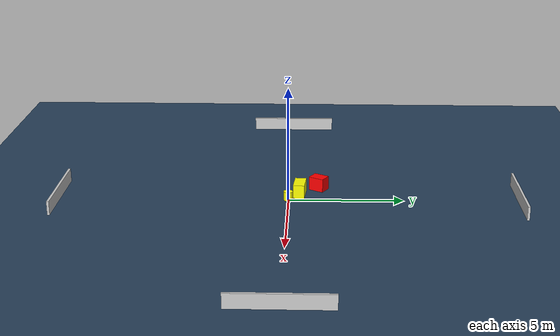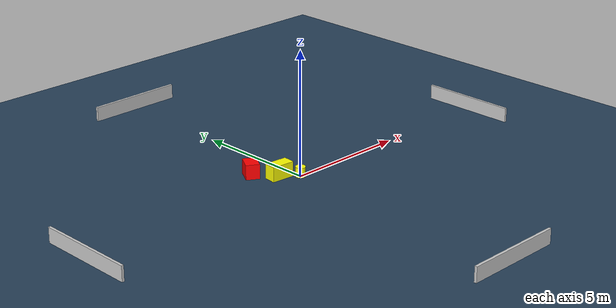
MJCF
<?xml version="1.0" ?>
<mujoco model="generated_environment">
  <option timestep="0.01" integrator="RK4" cone="elliptic"/>
  <default>
    <geom density="1"/>
  </default>
  <asset>
    <texture builtin="gradient" height="3072" name="skybox" rgb1="0.3 0.5 0.7" rgb2="0 0 0" type="skybox" width="512"/>
    <texture builtin="checker" height="300" name="groundplane" rgb1="0.2 0.3 0.4" rgb2="0.1 0.2 0.3" type="2d" width="300"/>
    <material name="groundplane" reflectance="0.2" texrepeat="5 5" texture="groundplane"/>
  </asset>
  <worldbody>
    <light dir="0 0 -1" directional="true" pos="0 0 1.5"/>
    <geom condim="3" friction="0.5 0.005 0.001" material="groundplane" name="floor" pos="0 0 0" size="0 0 0.05" type="plane"/>
    <body name="walls">
      <geom name="wall_1" condim="4" pos="-10.0 0.0 0.3" rgba="0.800000011920929 0.800000011920929 0.800000011920929 1.0" size="0.05 2.0 0.3" type="box"/>
      <geom name="wall_2" condim="4" pos="10.0 0.0 0.3" rgba="0.800000011920929 0.800000011920929 0.800000011920929 1.0" size="0.05 2.0 0.3" type="box"/>
      <geom name="wall_3" condim="4" pos="0.0 -10.0 0.3" rgba="0.800000011920929 0.800000011920929 0.800000011920929 1.0" size="2.0 0.05 0.3" type="box"/>
      <geom name="wall_4" condim="4" pos="0.0 10.0 0.3" rgba="0.800000011920929 0.800000011920929 0.800000011920929 1.0" size="2.0 0.05 0.3" type="box"/>
    </body>
    <body name="robot">
      <joint name="joint_x" type="slide" pos="0 0 0" axis="1 0 0"/>
      <joint name="joint_y" type="slide" pos="0 0 0" axis="0 1 0"/>
      <geom name="robot" type="cylinder" pos="0.0 0.0 0.2" size="0.2 0.2 0.0" mass="5.0" friction="1.0 0.005 0.0001" condim="4" rgba="1.0 1.0 0.0 1.0"/>
    </body>
    <body name="obstacle_1_movable">
      <geom name="obstacle_1_movable" condim="4" pos="-0.6385738124851129 0.48737114236235163 0.3" euler="0 0 264.8219837413462" friction="0.0 0.005 0.001" rgba="1.0 1.0 0.0 1.0" size="0.24452967787328875 0.47489510957878384 0.3" type="box" mass="0.1"/>
      <joint type="free"/>
    </body>
    <body name="obstacle_2_static">
      <geom name="obstacle_2_static" condim="4" pos="-1.3242798816558978 1.3231824756711577 0.3" euler="0 0 149.11877886992295" friction="0.0 0.005 0.001" rgba="1.0 0.0 0.0 1.0" size="0.27140484146573374 0.34778793132243335 0.3" type="box"/>
    </body>
  </worldbody>
  <actuator>
    <motor name="actuator_x" joint="joint_x" gear="1" ctrlrange="-1 1"/>
    <motor name="actuator_y" joint="joint_y" gear="1" ctrlrange="-1 1"/>
  </actuator>
</mujoco>
